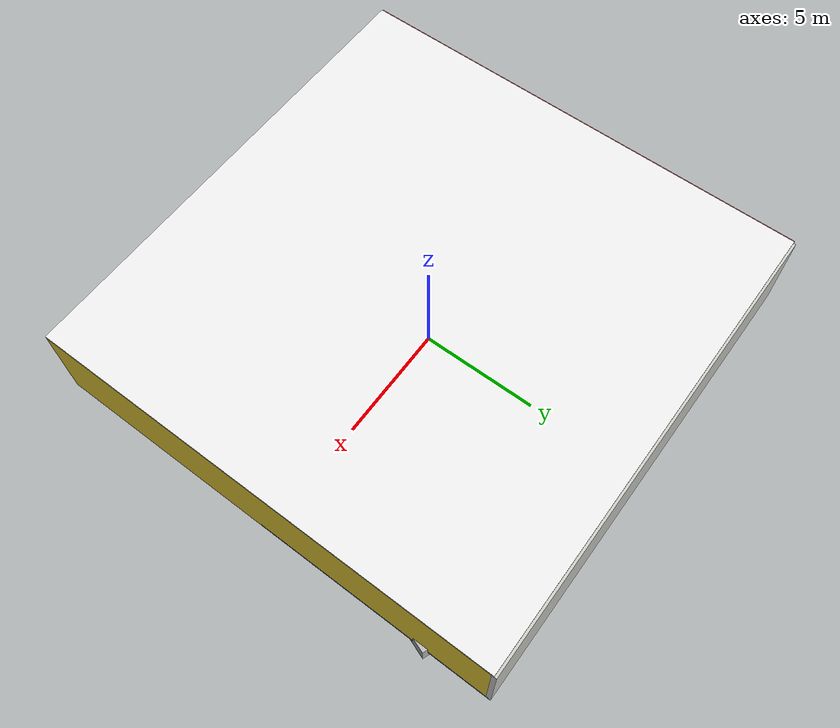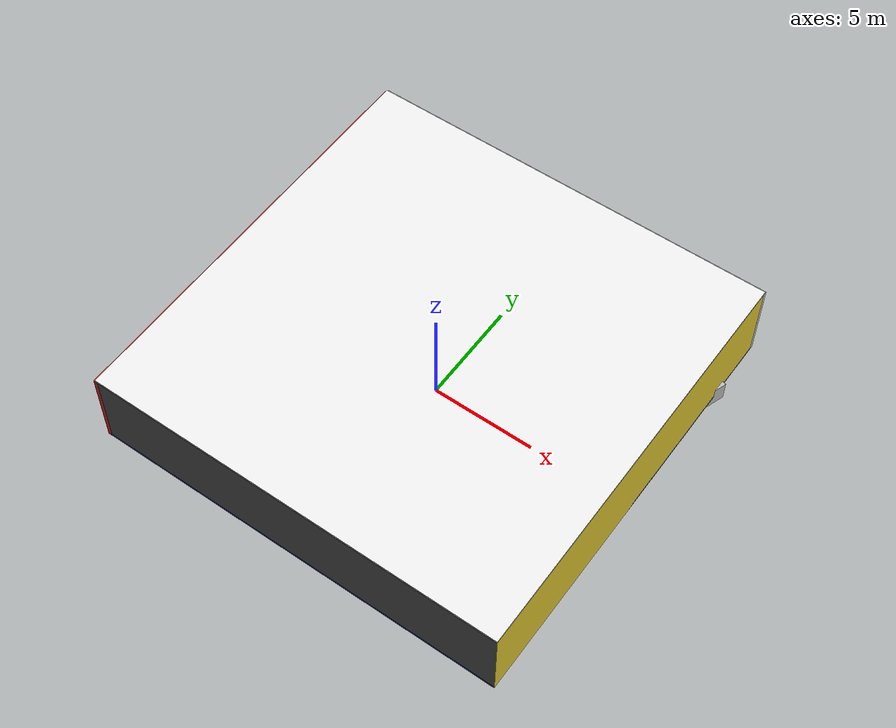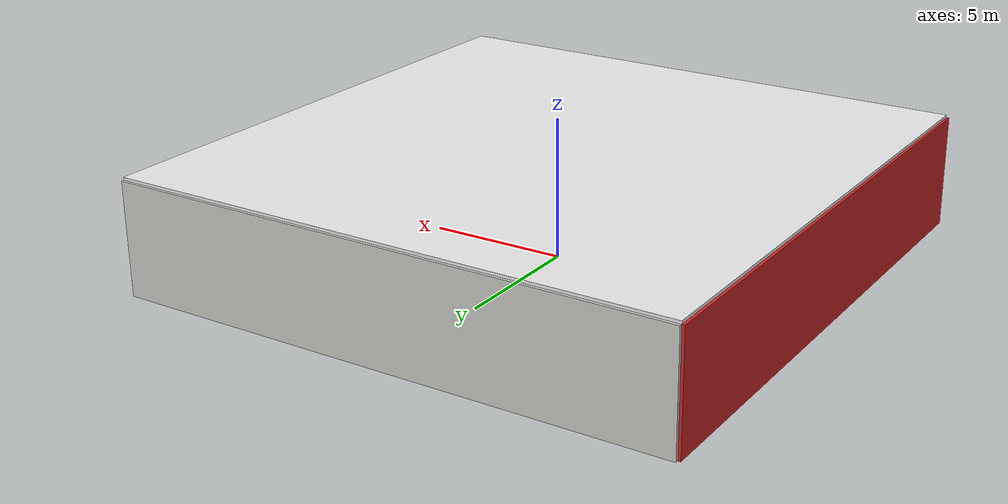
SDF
<sdf version="1.4">
 <world name="default">
  <physics type="ode">
   <max_step_size>0.001</max_step_size>
   <real_time_factor>1</real_time_factor>
   <real_time_update_rate>1000</real_time_update_rate>
   <gravity>0 0 -9.8</gravity>
  </physics>
  <scene><ambient>0.4 0.4 0.4 1</ambient><background>0.7 0.7 0.7 1</background><shadows>1</shadows></scene>
  <model name="Surrounding">
   <static>1</static>
   <link name="Ceiling">
    <collision name="Ceiling_Collision"><geometry><box><size>20 20 0.1</size></box></geometry></collision>
    <visual name="Ceiling_Visual">
     <geometry><box><size>20 20 0.1</size></box></geometry>
     <material>
      <script><uri>file://media/materials/scripts/gazebo.material</uri><name>Gazebo/White</name></script>
     </material>
    </visual>
    <pose>0 0 4.05 0 0 0</pose>
   </link>
   <link name="Wall_South">
    <collision name="Wall_South_Collision">
     <geometry><box><size>20 0 4</size></box></geometry>
     <pose>0 0 2 0 -0 0</pose>
    </collision>
    <visual name="Wall_South_Visual">
     <pose>0 0 2 0 -0 0</pose>
     <geometry><box><size>20 0 4</size></box></geometry>
     <material>
      <script><uri>file://media/materials/scripts/gazebo.material</uri><name>Gazebo/Road</name></script>
     </material>
    </visual>
    <velocity_decay><linear>0</linear><angular>0</angular></velocity_decay>
    <pose>0 -10 0 0 -0 0</pose>
   </link>
   <link name="Wall_East">
    <collision name="Wall_21_Collision">
     <geometry><box><size>20 0 4</size></box></geometry>
     <pose>0 0 2 0 -0 0</pose>
    </collision>
    <visual name="Wall_21_Visual">
     <pose>0 0 2 0 -0 0</pose>
     <geometry><box><size>20 0 4</size></box></geometry>
     <material>
      <script><uri>file://media/materials/scripts/gazebo.material</uri><name>Gazebo/ZincYellow</name></script>
     </material>
    </visual>
    <velocity_decay><linear>0</linear><angular>0</angular></velocity_decay>
    <pose>10 0 0 0 -0 1.5708</pose>
   </link>
   <link name="Wall_North">
    <collision name="Wall_22_Collision">
     <geometry><box><size>20 0.2 4</size></box></geometry>
     <pose>0 0 2 0 -0 0</pose>
    </collision>
    <visual name="Wall_22_Visual">
     <pose>0 0 2 0 -0 0</pose>
     <geometry><box><size>20 0.2 4</size></box></geometry>
     <material>
      <script><uri>file://media/materials/scripts/gazebo.material</uri><name>Gazebo/CeilingTiled</name></script>
     </material>
    </visual>
    <velocity_decay><linear>0</linear><angular>0</angular></velocity_decay>
    <pose>0 10 0 0 -0 0</pose>
   </link>
   <link name="Wall_West">
    <collision name="Wall_23_Collision">
     <geometry><box><size>20 0.2 4</size></box></geometry>
     <pose>0 0 2 0 -0 0</pose>
    </collision>
    <visual name="Wall_23_Visual">
     <pose>0 0 2 0 -0 0</pose>
     <geometry><box><size>20 0.2 4</size></box></geometry>
     <material>
      <script><uri>file://media/materials/scripts/gazebo.material</uri><name>Gazebo/RedBright</name></script>
     </material>
    </visual>
    <velocity_decay><linear>0</linear><angular>0</angular></velocity_decay>
    <pose>-10 0 0 0 0 -1.5708</pose>
   </link>
   <link name="Ground_link">
    <collision name="collision">
     <pose>0 0 .05 0 -0 0</pose>
     <geometry><box><size>20 20 0.1</size></box></geometry>
    </collision>
    <visual name="visual">
     <pose>0 0 .05 0 -0 0</pose>
     <geometry><box><size>20 20 0.1</size></box></geometry>
     <material>
      <script><uri>file://media/materials/scripts/gazebo.material</uri><name>Gazebo/Blue</name></script>
     </material>
    </visual>
   </link>
   <static>1</static>
  </model>
  <spherical_coordinates>
   <surface_model>EARTH_WGS84</surface_model>
   <latitude_deg>0</latitude_deg>
   <longitude_deg>0</longitude_deg>
   <elevation>0</elevation>
   <heading_deg>0</heading_deg>
  </spherical_coordinates>
  <light name="lightball_0" type="diffuse">
   <diffuse>0.8 0.8 0.8 1</diffuse>
   <specular>0.2 0.2 0.2 1</specular>
   <attenuation>
    <range>100</range>
    <constant>0.7</constant>
    <linear>0.01</linear>
    <quadratic>0.001</quadratic>
   </attenuation>
   <direction>-0.5 0.1 -0.9</direction>
   <pose>-8.87678134877 4.21877328256 2.15582005958 0 0 0</pose>
  </light>
  <light name="lightball_1" type="diffuse">
   <diffuse>0.8 0.8 0.8 1</diffuse>
   <specular>0.2 0.2 0.2 1</specular>
   <attenuation>
    <range>100</range>
    <constant>0.7</constant>
    <linear>0.01</linear>
    <quadratic>0.001</quadratic>
   </attenuation>
   <direction>-0.5 0.1 -0.9</direction>
   <pose>-2.96402243972 2.83903601499 1.75902668441 0 0 0</pose>
  </light>
  <include><uri>model://cabinet</uri><pose>-7.74451279324 1.06963724458 0 0 0 0.188814286603</pose></include>
  <include><uri>model://cabinet</uri><pose>-4.15384048996 4.85268540237 0 0 0 1.4931838869</pose></include>
  <include><uri>model://cabinet</uri><pose>2.25167548332 4.87152733935 0 0 0 0.289865346008</pose></include>
  <include>
   <uri>model://robocup_3Dsim_goal</uri>
   <pose>4.87352923463 8.29060182324 0 0 0 2.74211198838</pose>
  </include>
  <include><uri>model://cabinet</uri><pose>7.00694289765 -7.02841724472 0 0 0 1.57305360132</pose></include>
  <include>
   <uri>model://construction_cone</uri>
   <pose>7.73907914384 -4.49584753356 0 0 0 1.44536241787</pose>
  </include>
  <include>
   <uri>model://textured_shapes</uri>
   <pose>8.14990115047 7.5220555847 0 0 0 1.23444195741</pose>
  </include>
 </world>
</sdf>

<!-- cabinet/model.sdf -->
<sdf version="1.5">
  <model name="cabinet">
    <static>true</static>
    <link name="cabinet_bottom_plate">
      <inertial>
        <pose>0 0 -1 0 0 0</pose>
        <inertia>
          <ixx>2.050000</ixx>
          <ixy>0</ixy>
          <ixz>0</ixz>
          <iyy>2.050000</iyy>
          <iyz>0</iyz>
          <izz>2.050000</izz>
        </inertia>
        <mass>25.000000</mass>
      </inertial>
      <collision name="cabinet_bottom_plate_geom">
        <pose>0 0 0.010000 0 0 0</pose>
        <geometry>
          <box>
            <size>0.450000 0.450000 0.020000</size>
          </box>
        </geometry>
      </collision>
      <visual name="cabinet_bottom_plate_geom_visual">
        <pose>0 0 0.010000 0 0 0</pose>
        <geometry>
          <box>
            <size>0.450000 0.450000 0.020000</size>
          </box>
        </geometry>
        <material>
          <script>
            <uri>model://media/materials/scripts/gazebo.material</uri>
            <name>Gazebo/Wood</name>
          </script>
        </material>
      </visual>
      <collision name="cabinet_bottom_plate_geom_cabinet_back_plate">
        <pose>0.235000 0 0.510000 0 0 0</pose>
        <geometry>
          <box>
            <size>0.020000 0.450000 1.020000</size>
          </box>
        </geometry>
      </collision>
      <visual name="cabinet_bottom_plate_geom_cabinet_back_plate_visual">
        <pose>0.235000 0 0.510000 0 0 0</pose>
        <geometry>
          <box>
            <size>0.020000 0.450000 1.020000</size>
          </box>
        </geometry>
        <material>
          <script>
            <uri>model://media/materials/scripts/gazebo.material</uri>
            <name>Gazebo/Wood</name>
          </script>
        </material>
      </visual>
      <collision name="cabinet_bottom_plate_geom_cabinet_left_plate">
        <pose>0 0.235000 0.510000 0 0 0</pose>
        <geometry>
          <box>
            <size>0.450000 0.020000 1.020000</size>
          </box>
        </geometry>
      </collision>
      <visual name="cabinet_bottom_plate_geom_cabinet_left_plate_visual">
        <pose>0 0.235000 0.510000 0 0 0</pose>
        <geometry>
          <box>
            <size>0.450000 0.020000 1.020000</size>
          </box>
        </geometry>
        <material>
          <script>
            <uri>model://media/materials/scripts/gazebo.material</uri>
            <name>Gazebo/Wood</name>
          </script>
        </material>
      </visual>
      <collision name="cabinet_bottom_plate_geom_cabinet_middle_plate">
        <pose>0 0 0.510000 0 0 0</pose>
        <geometry>
          <box>
            <size>0.450000 0.450000 0.020000</size>
          </box>
        </geometry>
      </collision>
      <visual name="cabinet_bottom_plate_geom_cabinet_middle_plate_visual">
        <pose>0 0 0.510000 0 0 0</pose>
        <geometry>
          <box>
            <size>0.450000 0.450000 0.020000</size>
          </box>
        </geometry>
        <material>
          <script>
            <uri>model://media/materials/scripts/gazebo.material</uri>
            <name>Gazebo/Wood</name>
          </script>
        </material>
      </visual>
      <collision name="cabinet_bottom_plate_geom_cabinet_right_plate">
        <pose>0 -0.235000 0.510000 0 0 0</pose>
        <geometry>
          <box>
            <size>0.450000 0.020000 1.020000</size>
          </box>
        </geometry>
      </collision>
      <visual name="cabinet_bottom_plate_geom_cabinet_right_plate_visual">
        <pose>0 -0.235000 0.510000 0 0 0</pose>
        <geometry>
          <box>
            <size>0.450000 0.020000 1.020000</size>
          </box>
        </geometry>
        <material>
          <script>
            <uri>model://media/materials/scripts/gazebo.material</uri>
            <name>Gazebo/Wood</name>
          </script>
        </material>
      </visual>
      <collision name="cabinet_bottom_plate_geom_cabinet_top_plate">
        <pose>0 0 1.010000 0 0 0</pose>
        <geometry>
          <box>
            <size>0.450000 0.450000 0.020000</size>
          </box>
        </geometry>
      </collision>
      <visual name="cabinet_bottom_plate_geom_cabinet_top_plate_visual">
        <pose>0 0 1.010000 0 0 0</pose>
        <geometry>
          <box>
            <size>0.450000 0.450000 0.020000</size>
          </box>
        </geometry>
        <material>
          <script>
            <uri>model://media/materials/scripts/gazebo.material</uri>
            <name>Gazebo/Wood</name>
          </script>
        </material>
      </visual>
    </link>
  </model>
</sdf>

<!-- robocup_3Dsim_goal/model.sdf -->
<sdf version="1.5">
  <model name="robocup_3d_goal">
    <static>true</static>
    <link name="left_post">
      <pose>0 1.05 0.45 0 0 0</pose>
      <collision name="collision">
        <geometry>
          <cylinder>
            <radius>0.05</radius>
            <length>0.9</length>
          </cylinder>
        </geometry>
      </collision>
      <visual name="visual">
        <geometry>
          <cylinder>
            <radius>0.05</radius>
            <length>0.9</length>
          </cylinder>
        </geometry>
        <material>
          <script>
            <uri>file://media/materials/scripts/gazebo.material</uri>
            <name>Gazebo/ZincYellow</name>
          </script>
        </material>
      </visual>
    </link>
    <link name="left_support_horiz_lower">
      <pose>0.30 1.05 0.01 0 0 0</pose>
      <collision name="collision">
        <geometry>
          <box>
            <size>0.50 0.02 0.02</size>
          </box>
        </geometry>
      </collision>
      <visual name="visual">
        <geometry>
          <box>
            <size>0.50 0.02 0.02</size>
          </box>
        </geometry>
        <material>
          <script>
            <uri>file://media/materials/scripts/gazebo.material</uri>
            <name>Gazebo/White</name>
          </script>
        </material>
      </visual>
    </link>
    <link name="left_support_horiz_upper">
      <pose>0.30 1.05 0.79 0 0 0</pose>
      <collision name="collision">
        <geometry>
          <box>
            <size>0.50 0.02 0.02</size>
          </box>
        </geometry>
      </collision>
      <visual name="visual">
        <geometry>
          <box>
            <size>0.50 0.02 0.02</size>
          </box>
        </geometry>
        <material>
          <script>
            <uri>file://media/materials/scripts/gazebo.material</uri>
            <name>Gazebo/White</name>
          </script>
        </material>
      </visual>
    </link>
    <link name="left_support_vertical">
      <pose>0.56 1.05 0.4 0 1.5708 0</pose>
      <collision name="collision">
        <geometry>
          <box>
            <size>0.80 0.02 0.02</size>
          </box>
        </geometry>
      </collision>
      <visual name="visual">
        <geometry>
          <box>
            <size>0.80 0.02 0.02</size>
          </box>
        </geometry>
        <material>
          <script>
            <uri>file://media/materials/scripts/gazebo.material</uri>
            <name>Gazebo/White</name>
          </script>
        </material>
      </visual>
    </link>
    <link name="right_support_horiz_lower">
      <pose>0.30 -1.05 0.01 0 0 0</pose>
      <collision name="collision">
        <geometry>
          <box>
            <size>0.50 0.02 0.02</size>
          </box>
        </geometry>
      </collision>
      <visual name="visual">
        <geometry>
          <box>
            <size>0.50 0.02 0.02</size>
          </box>
        </geometry>
        <material>
          <script>
            <uri>file://media/materials/scripts/gazebo.material</uri>
            <name>Gazebo/White</name>
          </script>
        </material>
      </visual>
    </link>
    <link name="right_support_horiz_upper">
      <pose>0.30 -1.05 0.79 0 0 0</pose>
      <collision name="collision">
        <geometry>
          <box>
            <size>0.50 0.02 0.02</size>
          </box>
        </geometry>
      </collision>
      <visual name="visual">
        <geometry>
          <box>
            <size>0.50 0.02 0.02</size>
          </box>
        </geometry>
        <material>
          <script>
            <uri>file://media/materials/scripts/gazebo.material</uri>
            <name>Gazebo/White</name>
          </script>
        </material>
      </visual>
    </link>
    <link name="right_support_vertical">
      <pose>0.56 -1.05 0.4 0 1.5708 0</pose>
      <collision name="collision">
        <geometry>
          <box>
            <size>0.80 0.02 0.02</size>
          </box>
        </geometry>
      </collision>
      <visual name="visual">
        <geometry>
          <box>
            <size>0.80 0.02 0.02</size>
          </box>
        </geometry>
        <material>
          <script>
            <uri>file://media/materials/scripts/gazebo.material</uri>
            <name>Gazebo/White</name>
          </script>
        </material>
      </visual>
    </link>
    <link name="center_support_horiz_lower">
      <pose>0.56 0 0.01 0 1.5708 0</pose>
      <collision name="collision">
        <geometry>
          <box>
            <size>0.02 2.08 0.02</size>
          </box>
        </geometry>
      </collision>
      <visual name="visual">
        <geometry>
          <box>
            <size>0.02 2.08 0.02</size>
          </box>
        </geometry>
        <material>
          <script>
            <uri>file://media/materials/scripts/gazebo.material</uri>
            <name>Gazebo/White</name>
          </script>
        </material>
      </visual>
    </link>
    <link name="center_support_horiz_upper">
      <pose>0.56 0 0.79 0 1.5708 0</pose>
      <collision name="collision">
        <geometry>
          <box>
            <size>0.02 2.08 0.02</size>
          </box>
        </geometry>
      </collision>
      <visual name="visual">
        <geometry>
          <box>
            <size>0.02 2.08 0.02</size>
          </box>
        </geometry>
        <material>
          <script>
            <uri>file://media/materials/scripts/gazebo.material</uri>
            <name>Gazebo/White</name>
          </script>
        </material>
      </visual>
    </link>
    <link name="right_post">
      <pose>0 -1.05 0.45 0 0 0</pose>
      <collision name="collision">
        <geometry>
          <cylinder>
            <radius>0.05</radius>
            <length>0.9</length>
          </cylinder>
        </geometry>
      </collision>
      <visual name="visual">
        <geometry>
          <cylinder>
            <radius>0.05</radius>
            <length>0.9</length>
          </cylinder>
        </geometry>
        <material>
          <script>
            <uri>file://media/materials/scripts/gazebo.material</uri>
            <name>Gazebo/ZincYellow</name>
          </script>
        </material>
      </visual>
    </link>
    <link name="crossbar">
      <pose>0 0 0.85 1.57 1.57 0</pose>
      <collision name="collision">
        <geometry>
          <cylinder>
            <radius>0.05</radius>
            <length>2.0</length>
          </cylinder>
        </geometry>
      </collision>
      <visual name="visual">
        <geometry>
          <cylinder>
            <radius>0.05</radius>
            <length>2.0</length>
          </cylinder>
        </geometry>
        <material>
          <script>
            <uri>file://media/materials/scripts/gazebo.material</uri>
            <name>Gazebo/ZincYellow</name>
          </script>
        </material>
      </visual>
    </link>
    <link name="center_net">
      <pose>0.56 0 0.40 0 0 0</pose>
      <collision name="collision">
        <geometry>
          <box>
            <size>0.01 2.1 0.80</size>
          </box>
        </geometry>
      </collision>
      <visual name="visual">
        <geometry>
          <box>
            <size>0.01 2.1 0.80</size>
          </box>
        </geometry>
        <material>
          <script>
            <uri>model://../model_source/models/robocup09_spl_field/materials/scripts/</uri>
            <uri>model://../model_source/models/robocup09_spl_field/materials/textures/</uri>
            <name>RoboCup/Net</name>
          </script>
        </material>
      </visual>
    </link>
    <link name="left_net">
      <pose>0.30 1.05 0.40 0 0 0</pose>
      <collision name="collision">
        <geometry>
          <box>
            <size>0.50 0.01 0.76</size>
          </box>
        </geometry>
      </collision>
      <visual name="visual">
        <geometry>
          <box>
            <size>0.50 0.01 0.76</size>
          </box>
        </geometry>
        <material>
          <script>
            <uri>model://../model_source/models/robocup09_spl_field/materials/scripts/</uri>
            <uri>model://../model_source/models/robocup09_spl_field/materials/textures/</uri>
            <name>RoboCup/Net</name>
          </script>
        </material>
      </visual>
    </link>
    <link name="right_net">
      <pose>0.30 -1.05 0.40 0 0 0</pose>
      <collision name="collision">
        <geometry>
          <box>
            <size>0.50 0.01 0.76</size>
          </box>
        </geometry>
      </collision>
      <visual name="visual">
        <geometry>
          <box>
            <size>0.50 0.01 0.76</size>
          </box>
        </geometry>
        <material>
          <script>
            <uri>model://../model_source/models/robocup09_spl_field/materials/scripts/</uri>
            <uri>model://../model_source/models/robocup09_spl_field/materials/textures/</uri>
            <name>RoboCup/Net</name>
          </script>
        </material>
      </visual>
    </link>
  </model>
</sdf>

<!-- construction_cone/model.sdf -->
<sdf version="1.5">
  <model name="Construction Cone">
    <link name="link">
      <collision name="collision">
        <geometry>
          <mesh>
            <scale>10 10 10</scale>
            <uri>file://isr-testbed/construction_cone/meshes/construction_cone.dae</uri>
          </mesh>
        </geometry>
      </collision>
      <visual name="visual">
        <geometry>
          <mesh>
            <scale>10 10 10</scale>
            <uri>file://isr-testbed/construction_cone/meshes/construction_cone.dae</uri>
          </mesh>
        </geometry>
      </visual>
    </link>
  </model>
</sdf>

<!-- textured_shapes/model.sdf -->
<sdf version="1.6">
  <model name="textured_shapes">
    <pose>0 0 0.5 0 0 0</pose>
    <link name="box">
      <pose>0 -1.5 0 0 0 0</pose>
      <collision name="collision">
        <geometry>
          <box>
            <size>1 1 1</size>
          </box>
        </geometry>
      </collision>
      <visual name="visual">
        <geometry>
          <box>
            <size>1 1 1</size>
          </box>
        </geometry>
        <material>
          <script>
            <uri>model://../model_source/models/textured_shapes/materials/scripts</uri>
            <uri>model://../model_source/models/textured_shapes/materials/textures</uri>
            <name>TexturedShape/Squares</name>
          </script>
        </material>
      </visual>
    </link>
    <link name="sphere">
      <collision name="collision">
        <geometry>
          <sphere>
            <radius>0.5</radius>
          </sphere>
        </geometry>
      </collision>
      <visual name="visual">
        <geometry>
          <sphere>
            <radius>0.5</radius>
          </sphere>
        </geometry>
        <material>
          <script>
            <uri>model://../model_source/models/textured_shapes/materials/scripts</uri>
            <uri>model://../model_source/models/textured_shapes/materials/textures</uri>
            <name>TexturedShape/Squares</name>
          </script>
        </material>
      </visual>
    </link>
    <link name="cylinder">
      <pose>0 1.5 0 0 0 0</pose>
      <collision name="collision">
        <geometry>
          <cylinder>
            <radius>0.5</radius>
            <length>1</length>
          </cylinder>
        </geometry>
      </collision>
      <visual name="visual">
        <geometry>
          <cylinder>
            <radius>0.5</radius>
            <length>1</length>
          </cylinder>
        </geometry>
        <material>
          <script>
            <uri>model://../model_source/models/textured_shapes/materials/scripts</uri>
            <uri>model://../model_source/models/textured_shapes/materials/textures</uri>
            <name>TexturedShape/Squares</name>
          </script>
        </material>
      </visual>
    </link>
  </model>
</sdf>
